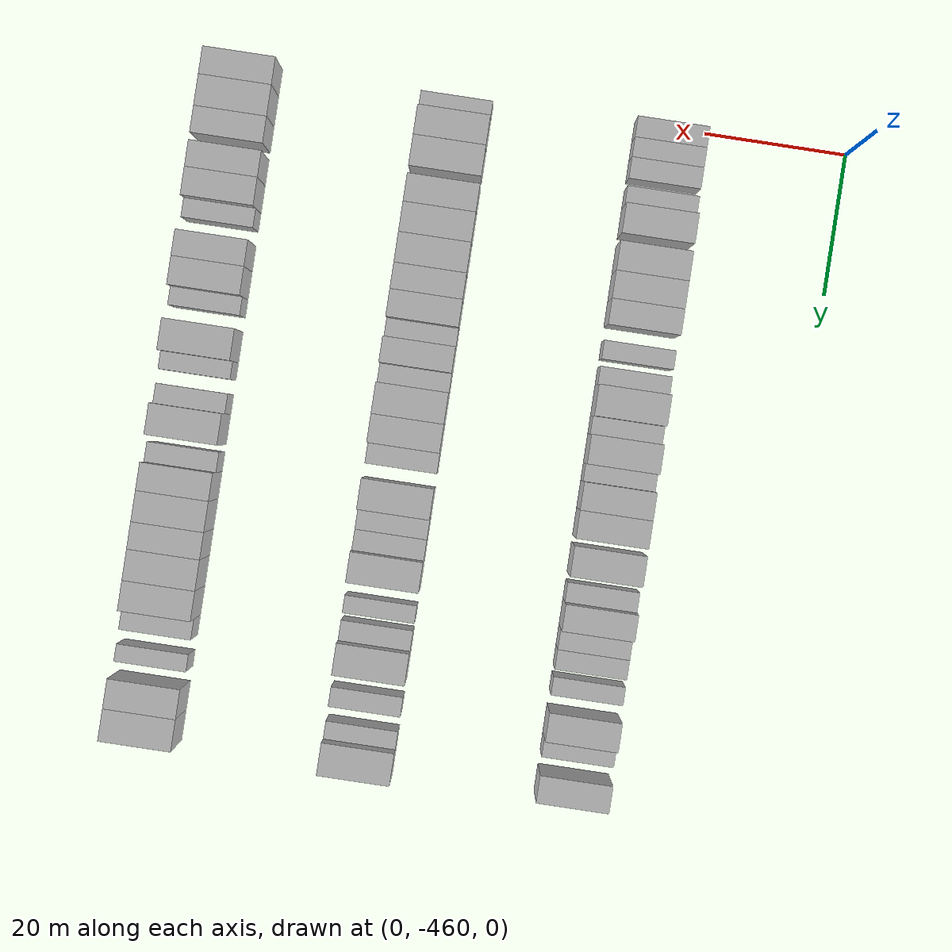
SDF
<sdf version="1.6">
 <world name="default">
  <model name="building_1">
   <static>1</static>
   <pose>25.0000 -458.5501 0 0.000000 0.000000 0.000000</pose>
   <link name="link">
    <pose>0 0 3.00 0 0 0</pose>
    <collision name="collision"><geometry><box><size>10.0000 2.8998 6.0000</size></box></geometry></collision>
    <visual name="visual">
     <cast_shadows>0</cast_shadows>
     <geometry><box><size>10.0000 2.8998 6.0000</size></box></geometry>
     <material>
      <script>
       <uri>model://HANNAS_wall/materials/scripts</uri>
       <uri>model://HANNAS_wall/materials/textures</uri>
       <name>vrc/HANNAS_wall</name>
      </script>
     </material>
    </visual>
   </link>
  </model>
  <model name="building_2">
   <static>1</static>
   <pose>25.0000 -455.7157 0 0.000000 0.000000 0.000000</pose>
   <link name="link">
    <pose>0 0 3.00 0 0 0</pose>
    <collision name="collision"><geometry><box><size>10.0000 2.7691 6.0000</size></box></geometry></collision>
    <visual name="visual">
     <cast_shadows>0</cast_shadows>
     <geometry><box><size>10.0000 2.7691 6.0000</size></box></geometry>
     <material>
      <script>
       <uri>model://HANNAS_wall/materials/scripts</uri>
       <uri>model://HANNAS_wall/materials/textures</uri>
       <name>vrc/HANNAS_wall</name>
      </script>
     </material>
    </visual>
   </link>
  </model>
  <model name="building_3">
   <static>1</static>
   <pose>25.0000 -452.8345 0 0.000000 0.000000 0.000000</pose>
   <link name="link">
    <pose>0 0 3.00 0 0 0</pose>
    <collision name="collision"><geometry><box><size>10.0000 2.9934 6.0000</size></box></geometry></collision>
    <visual name="visual">
     <cast_shadows>0</cast_shadows>
     <geometry><box><size>10.0000 2.9934 6.0000</size></box></geometry>
     <material>
      <script>
       <uri>model://HANNAS_wall/materials/scripts</uri>
       <uri>model://HANNAS_wall/materials/textures</uri>
       <name>vrc/HANNAS_wall</name>
      </script>
     </material>
    </visual>
   </link>
  </model>
  <model name="building_4">
   <static>1</static>
   <pose>25.0000 -448.9767 0 0.000000 0.000000 0.000000</pose>
   <link name="link">
    <pose>0 0 3.00 0 0 0</pose>
    <collision name="collision"><geometry><box><size>10.0000 2.7221 6.0000</size></box></geometry></collision>
    <visual name="visual">
     <cast_shadows>0</cast_shadows>
     <geometry><box><size>10.0000 2.7221 6.0000</size></box></geometry>
     <material>
      <script>
       <uri>model://HANNAS_wall/materials/scripts</uri>
       <uri>model://HANNAS_wall/materials/textures</uri>
       <name>vrc/HANNAS_wall</name>
      </script>
     </material>
    </visual>
   </link>
  </model>
  <model name="building_5">
   <static>1</static>
   <pose>25.0000 -445.5205 0 0.000000 0.000000 0.000000</pose>
   <link name="link">
    <pose>0 0 4.50 0 0 0</pose>
    <collision name="collision"><geometry><box><size>10.0000 4.1904 9.0000</size></box></geometry></collision>
    <visual name="visual">
     <cast_shadows>0</cast_shadows>
     <geometry><box><size>10.0000 4.1904 9.0000</size></box></geometry>
     <material>
      <script>
       <uri>model://HANNAS_wall/materials/scripts</uri>
       <uri>model://HANNAS_wall/materials/textures</uri>
       <name>vrc/HANNAS_wall</name>
      </script>
     </material>
    </visual>
   </link>
  </model>
  <model name="building_6">
   <static>1</static>
   <pose>25.0000 -440.3815 0 0.000000 0.000000 0.000000</pose>
   <link name="link">
    <pose>0 0 4.50 0 0 0</pose>
    <collision name="collision"><geometry><box><size>10.0000 4.0876 9.0000</size></box></geometry></collision>
    <visual name="visual">
     <cast_shadows>0</cast_shadows>
     <geometry><box><size>10.0000 4.0876 9.0000</size></box></geometry>
     <material>
      <script>
       <uri>model://HANNAS_wall/materials/scripts</uri>
       <uri>model://HANNAS_wall/materials/textures</uri>
       <name>vrc/HANNAS_wall</name>
      </script>
     </material>
    </visual>
   </link>
  </model>
  <model name="building_7">
   <static>1</static>
   <pose>25.0000 -436.4163 0 0.000000 0.000000 0.000000</pose>
   <link name="link">
    <pose>0 0 4.50 0 0 0</pose>
    <collision name="collision"><geometry><box><size>10.0000 3.8426 9.0000</size></box></geometry></collision>
    <visual name="visual">
     <cast_shadows>0</cast_shadows>
     <geometry><box><size>10.0000 3.8426 9.0000</size></box></geometry>
     <material>
      <script>
       <uri>model://HANNAS_wall/materials/scripts</uri>
       <uri>model://HANNAS_wall/materials/textures</uri>
       <name>vrc/HANNAS_wall</name>
      </script>
     </material>
    </visual>
   </link>
  </model>
  <model name="building_8">
   <static>1</static>
   <pose>25.0000 -432.6935 0 0.000000 0.000000 0.000000</pose>
   <link name="link">
    <pose>0 0 4.50 0 0 0</pose>
    <collision name="collision"><geometry><box><size>10.0000 3.6031 9.0000</size></box></geometry></collision>
    <visual name="visual">
     <cast_shadows>0</cast_shadows>
     <geometry><box><size>10.0000 3.6031 9.0000</size></box></geometry>
     <material>
      <script>
       <uri>model://HANNAS_wall/materials/scripts</uri>
       <uri>model://HANNAS_wall/materials/textures</uri>
       <name>vrc/HANNAS_wall</name>
      </script>
     </material>
    </visual>
   </link>
  </model>
  <model name="building_9">
   <static>1</static>
   <pose>25.0000 -427.5836 0 0.000000 0.000000 0.000000</pose>
   <link name="link">
    <pose>0 0 3.00 0 0 0</pose>
    <collision name="collision"><geometry><box><size>10.0000 2.6165 6.0000</size></box></geometry></collision>
    <visual name="visual">
     <cast_shadows>0</cast_shadows>
     <geometry><box><size>10.0000 2.6165 6.0000</size></box></geometry>
     <material>
      <script>
       <uri>model://HANNAS_wall/materials/scripts</uri>
       <uri>model://HANNAS_wall/materials/textures</uri>
       <name>vrc/HANNAS_wall</name>
      </script>
     </material>
    </visual>
   </link>
  </model>
  <model name="building_10">
   <static>1</static>
   <pose>25.0000 -423.9953 0 0.000000 0.000000 0.000000</pose>
   <link name="link">
    <pose>0 0 3.00 0 0 0</pose>
    <collision name="collision"><geometry><box><size>10.0000 2.5602 6.0000</size></box></geometry></collision>
    <visual name="visual">
     <cast_shadows>0</cast_shadows>
     <geometry><box><size>10.0000 2.5602 6.0000</size></box></geometry>
     <material>
      <script>
       <uri>model://HANNAS_wall/materials/scripts</uri>
       <uri>model://HANNAS_wall/materials/textures</uri>
       <name>vrc/HANNAS_wall</name>
      </script>
     </material>
    </visual>
   </link>
  </model>
  <model name="building_11">
   <static>1</static>
   <pose>25.0000 -420.5401 0 0.000000 0.000000 0.000000</pose>
   <link name="link">
    <pose>0 0 4.50 0 0 0</pose>
    <collision name="collision"><geometry><box><size>10.0000 4.3502 9.0000</size></box></geometry></collision>
    <visual name="visual">
     <cast_shadows>0</cast_shadows>
     <geometry><box><size>10.0000 4.3502 9.0000</size></box></geometry>
     <material>
      <script>
       <uri>model://HANNAS_wall/materials/scripts</uri>
       <uri>model://HANNAS_wall/materials/textures</uri>
       <name>vrc/HANNAS_wall</name>
      </script>
     </material>
    </visual>
   </link>
  </model>
  <model name="building_12">
   <static>1</static>
   <pose>25.0000 -417.1077 0 0.000000 0.000000 0.000000</pose>
   <link name="link">
    <pose>0 0 3.00 0 0 0</pose>
    <collision name="collision"><geometry><box><size>10.0000 2.5145 6.0000</size></box></geometry></collision>
    <visual name="visual">
     <cast_shadows>0</cast_shadows>
     <geometry><box><size>10.0000 2.5145 6.0000</size></box></geometry>
     <material>
      <script>
       <uri>model://HANNAS_wall/materials/scripts</uri>
       <uri>model://HANNAS_wall/materials/textures</uri>
       <name>vrc/HANNAS_wall</name>
      </script>
     </material>
    </visual>
   </link>
  </model>
  <model name="building_13">
   <static>1</static>
   <pose>25.0000 -413.8038 0 0.000000 0.000000 0.000000</pose>
   <link name="link">
    <pose>0 0 4.50 0 0 0</pose>
    <collision name="collision"><geometry><box><size>10.0000 4.0934 9.0000</size></box></geometry></collision>
    <visual name="visual">
     <cast_shadows>0</cast_shadows>
     <geometry><box><size>10.0000 4.0934 9.0000</size></box></geometry>
     <material>
      <script>
       <uri>model://HANNAS_wall/materials/scripts</uri>
       <uri>model://HANNAS_wall/materials/textures</uri>
       <name>vrc/HANNAS_wall</name>
      </script>
     </material>
    </visual>
   </link>
  </model>
  <model name="building_14">
   <static>1</static>
   <pose>25.0000 -410.5262 0 0.000000 0.000000 0.000000</pose>
   <link name="link">
    <pose>0 0 3.00 0 0 0</pose>
    <collision name="collision"><geometry><box><size>10.0000 2.4617 6.0000</size></box></geometry></collision>
    <visual name="visual">
     <cast_shadows>0</cast_shadows>
     <geometry><box><size>10.0000 2.4617 6.0000</size></box></geometry>
     <material>
      <script>
       <uri>model://HANNAS_wall/materials/scripts</uri>
       <uri>model://HANNAS_wall/materials/textures</uri>
       <name>vrc/HANNAS_wall</name>
      </script>
     </material>
    </visual>
   </link>
  </model>
  <model name="building_15">
   <static>1</static>
   <pose>25.0000 -407.3554 0 0.000000 0.000000 0.000000</pose>
   <link name="link">
    <pose>0 0 4.50 0 0 0</pose>
    <collision name="collision"><geometry><box><size>10.0000 3.8799 9.0000</size></box></geometry></collision>
    <visual name="visual">
     <cast_shadows>0</cast_shadows>
     <geometry><box><size>10.0000 3.8799 9.0000</size></box></geometry>
     <material>
      <script>
       <uri>model://HANNAS_wall/materials/scripts</uri>
       <uri>model://HANNAS_wall/materials/textures</uri>
       <name>vrc/HANNAS_wall</name>
      </script>
     </material>
    </visual>
   </link>
  </model>
  <model name="building_16">
   <static>1</static>
   <pose>25.0000 -403.4733 0 0.000000 0.000000 0.000000</pose>
   <link name="link">
    <pose>0 0 4.50 0 0 0</pose>
    <collision name="collision"><geometry><box><size>10.0000 3.8842 9.0000</size></box></geometry></collision>
    <visual name="visual">
     <cast_shadows>0</cast_shadows>
     <geometry><box><size>10.0000 3.8842 9.0000</size></box></geometry>
     <material>
      <script>
       <uri>model://HANNAS_wall/materials/scripts</uri>
       <uri>model://HANNAS_wall/materials/textures</uri>
       <name>vrc/HANNAS_wall</name>
      </script>
     </material>
    </visual>
   </link>
  </model>
  <model name="building_17">
   <static>1</static>
   <pose>25.0000 -398.4117 0 0.000000 0.000000 0.000000</pose>
   <link name="link">
    <pose>0 0 4.50 0 0 0</pose>
    <collision name="collision"><geometry><box><size>10.0000 4.2392 9.0000</size></box></geometry></collision>
    <visual name="visual">
     <cast_shadows>0</cast_shadows>
     <geometry><box><size>10.0000 4.2392 9.0000</size></box></geometry>
     <material>
      <script>
       <uri>model://HANNAS_wall/materials/scripts</uri>
       <uri>model://HANNAS_wall/materials/textures</uri>
       <name>vrc/HANNAS_wall</name>
      </script>
     </material>
    </visual>
   </link>
  </model>
  <model name="building_18">
   <static>1</static>
   <pose>25.0000 -393.9038 0 0.000000 0.000000 0.000000</pose>
   <link name="link">
    <pose>0 0 3.00 0 0 0</pose>
    <collision name="collision"><geometry><box><size>10.0000 2.7766 6.0000</size></box></geometry></collision>
    <visual name="visual">
     <cast_shadows>0</cast_shadows>
     <geometry><box><size>10.0000 2.7766 6.0000</size></box></geometry>
     <material>
      <script>
       <uri>model://HANNAS_wall/materials/scripts</uri>
       <uri>model://HANNAS_wall/materials/textures</uri>
       <name>vrc/HANNAS_wall</name>
      </script>
     </material>
    </visual>
   </link>
  </model>
  <model name="building_19">
   <static>1</static>
   <pose>25.0000 -390.6571 0 0.000000 0.000000 0.000000</pose>
   <link name="link">
    <pose>0 0 4.50 0 0 0</pose>
    <collision name="collision"><geometry><box><size>10.0000 3.7168 9.0000</size></box></geometry></collision>
    <visual name="visual">
     <cast_shadows>0</cast_shadows>
     <geometry><box><size>10.0000 3.7168 9.0000</size></box></geometry>
     <material>
      <script>
       <uri>model://HANNAS_wall/materials/scripts</uri>
       <uri>model://HANNAS_wall/materials/textures</uri>
       <name>vrc/HANNAS_wall</name>
      </script>
     </material>
    </visual>
   </link>
  </model>
  <model name="building_20">
   <static>1</static>
   <pose>25.0000 -387.3638 0 0.000000 0.000000 0.000000</pose>
   <link name="link">
    <pose>0 0 3.00 0 0 0</pose>
    <collision name="collision"><geometry><box><size>10.0000 2.8698 6.0000</size></box></geometry></collision>
    <visual name="visual">
     <cast_shadows>0</cast_shadows>
     <geometry><box><size>10.0000 2.8698 6.0000</size></box></geometry>
     <material>
      <script>
       <uri>model://HANNAS_wall/materials/scripts</uri>
       <uri>model://HANNAS_wall/materials/textures</uri>
       <name>vrc/HANNAS_wall</name>
      </script>
     </material>
    </visual>
   </link>
  </model>
  <model name="building_21">
   <static>1</static>
   <pose>25.0000 -384.5546 0 0.000000 0.000000 0.000000</pose>
   <link name="link">
    <pose>0 0 3.00 0 0 0</pose>
    <collision name="collision"><geometry><box><size>10.0000 2.7485 6.0000</size></box></geometry></collision>
    <visual name="visual">
     <cast_shadows>0</cast_shadows>
     <geometry><box><size>10.0000 2.7485 6.0000</size></box></geometry>
     <material>
      <script>
       <uri>model://HANNAS_wall/materials/scripts</uri>
       <uri>model://HANNAS_wall/materials/textures</uri>
       <name>vrc/HANNAS_wall</name>
      </script>
     </material>
    </visual>
   </link>
  </model>
  <model name="building_22">
   <static>1</static>
   <pose>25.0000 -380.9059 0 0.000000 0.000000 0.000000</pose>
   <link name="link">
    <pose>0 0 3.00 0 0 0</pose>
    <collision name="collision"><geometry><box><size>10.0000 2.5488 6.0000</size></box></geometry></collision>
    <visual name="visual">
     <cast_shadows>0</cast_shadows>
     <geometry><box><size>10.0000 2.5488 6.0000</size></box></geometry>
     <material>
      <script>
       <uri>model://HANNAS_wall/materials/scripts</uri>
       <uri>model://HANNAS_wall/materials/textures</uri>
       <name>vrc/HANNAS_wall</name>
      </script>
     </material>
    </visual>
   </link>
  </model>
  <model name="building_23">
   <static>1</static>
   <pose>25.0000 -375.6319 0 0.000000 0.000000 0.000000</pose>
   <link name="link">
    <pose>0 0 4.50 0 0 0</pose>
    <collision name="collision"><geometry><box><size>10.0000 3.9991 9.0000</size></box></geometry></collision>
    <visual name="visual">
     <cast_shadows>0</cast_shadows>
     <geometry><box><size>10.0000 3.9991 9.0000</size></box></geometry>
     <material>
      <script>
       <uri>model://HANNAS_wall/materials/scripts</uri>
       <uri>model://HANNAS_wall/materials/textures</uri>
       <name>vrc/HANNAS_wall</name>
      </script>
     </material>
    </visual>
   </link>
  </model>
  <model name="building_24">
   <static>1</static>
   <pose>25.0000 -372.3390 0 0.000000 0.000000 0.000000</pose>
   <link name="link">
    <pose>0 0 3.00 0 0 0</pose>
    <collision name="collision"><geometry><box><size>10.0000 2.5869 6.0000</size></box></geometry></collision>
    <visual name="visual">
     <cast_shadows>0</cast_shadows>
     <geometry><box><size>10.0000 2.5869 6.0000</size></box></geometry>
     <material>
      <script>
       <uri>model://HANNAS_wall/materials/scripts</uri>
       <uri>model://HANNAS_wall/materials/textures</uri>
       <name>vrc/HANNAS_wall</name>
      </script>
     </material>
    </visual>
   </link>
  </model>
  <model name="building_25">
   <static>1</static>
   <pose>25.0000 -367.1583 0 0.000000 0.000000 0.000000</pose>
   <link name="link">
    <pose>0 0 4.50 0 0 0</pose>
    <collision name="collision"><geometry><box><size>10.0000 3.7744 9.0000</size></box></geometry></collision>
    <visual name="visual">
     <cast_shadows>0</cast_shadows>
     <geometry><box><size>10.0000 3.7744 9.0000</size></box></geometry>
     <material>
      <script>
       <uri>model://HANNAS_wall/materials/scripts</uri>
       <uri>model://HANNAS_wall/materials/textures</uri>
       <name>vrc/HANNAS_wall</name>
      </script>
     </material>
    </visual>
   </link>
  </model>
  <model name="building_226">
   <static>1</static>
   <pose>55.0000 -457.7772 0 0.000000 0.000000 0.000000</pose>
   <link name="link">
    <pose>0 0 3.00 0 0 0</pose>
    <collision name="collision"><geometry><box><size>10.0000 2.4456 6.0000</size></box></geometry></collision>
    <visual name="visual">
     <cast_shadows>0</cast_shadows>
     <geometry><box><size>10.0000 2.4456 6.0000</size></box></geometry>
     <material>
      <script>
       <uri>model://HANNAS_wall/materials/scripts</uri>
       <uri>model://HANNAS_wall/materials/textures</uri>
       <name>vrc/HANNAS_wall</name>
      </script>
     </material>
    </visual>
   </link>
  </model>
  <model name="building_227">
   <static>1</static>
   <pose>55.0000 -454.4988 0 0.000000 0.000000 0.000000</pose>
   <link name="link">
    <pose>0 0 4.50 0 0 0</pose>
    <collision name="collision"><geometry><box><size>10.0000 4.1113 9.0000</size></box></geometry></collision>
    <visual name="visual">
     <cast_shadows>0</cast_shadows>
     <geometry><box><size>10.0000 4.1113 9.0000</size></box></geometry>
     <material>
      <script>
       <uri>model://HANNAS_wall/materials/scripts</uri>
       <uri>model://HANNAS_wall/materials/textures</uri>
       <name>vrc/HANNAS_wall</name>
      </script>
     </material>
    </visual>
   </link>
  </model>
  <model name="building_228">
   <static>1</static>
   <pose>55.0000 -450.2972 0 0.000000 0.000000 0.000000</pose>
   <link name="link">
    <pose>0 0 4.50 0 0 0</pose>
    <collision name="collision"><geometry><box><size>10.0000 4.2917 9.0000</size></box></geometry></collision>
    <visual name="visual">
     <cast_shadows>0</cast_shadows>
     <geometry><box><size>10.0000 4.2917 9.0000</size></box></geometry>
     <material>
      <script>
       <uri>model://HANNAS_wall/materials/scripts</uri>
       <uri>model://HANNAS_wall/materials/textures</uri>
       <name>vrc/HANNAS_wall</name>
      </script>
     </material>
    </visual>
   </link>
  </model>
  <model name="building_229">
   <static>1</static>
   <pose>55.0000 -445.2065 0 0.000000 0.000000 0.000000</pose>
   <link name="link">
    <pose>0 0 4.50 0 0 0</pose>
    <collision name="collision"><geometry><box><size>10.0000 3.8897 9.0000</size></box></geometry></collision>
    <visual name="visual">
     <cast_shadows>0</cast_shadows>
     <geometry><box><size>10.0000 3.8897 9.0000</size></box></geometry>
     <material>
      <script>
       <uri>model://HANNAS_wall/materials/scripts</uri>
       <uri>model://HANNAS_wall/materials/textures</uri>
       <name>vrc/HANNAS_wall</name>
      </script>
     </material>
    </visual>
   </link>
  </model>
  <model name="building_230">
   <static>1</static>
   <pose>55.0000 -441.1866 0 0.000000 0.000000 0.000000</pose>
   <link name="link">
    <pose>0 0 4.50 0 0 0</pose>
    <collision name="collision"><geometry><box><size>10.0000 4.1501 9.0000</size></box></geometry></collision>
    <visual name="visual">
     <cast_shadows>0</cast_shadows>
     <geometry><box><size>10.0000 4.1501 9.0000</size></box></geometry>
     <material>
      <script>
       <uri>model://HANNAS_wall/materials/scripts</uri>
       <uri>model://HANNAS_wall/materials/textures</uri>
       <name>vrc/HANNAS_wall</name>
      </script>
     </material>
    </visual>
   </link>
  </model>
  <model name="building_231">
   <static>1</static>
   <pose>55.0000 -437.0083 0 0.000000 0.000000 0.000000</pose>
   <link name="link">
    <pose>0 0 4.50 0 0 0</pose>
    <collision name="collision"><geometry><box><size>10.0000 4.2065 9.0000</size></box></geometry></collision>
    <visual name="visual">
     <cast_shadows>0</cast_shadows>
     <geometry><box><size>10.0000 4.2065 9.0000</size></box></geometry>
     <material>
      <script>
       <uri>model://HANNAS_wall/materials/scripts</uri>
       <uri>model://HANNAS_wall/materials/textures</uri>
       <name>vrc/HANNAS_wall</name>
      </script>
     </material>
    </visual>
   </link>
  </model>
  <model name="building_232">
   <static>1</static>
   <pose>55.0000 -433.0946 0 0.000000 0.000000 0.000000</pose>
   <link name="link">
    <pose>0 0 4.50 0 0 0</pose>
    <collision name="collision"><geometry><box><size>10.0000 3.6209 9.0000</size></box></geometry></collision>
    <visual name="visual">
     <cast_shadows>0</cast_shadows>
     <geometry><box><size>10.0000 3.6209 9.0000</size></box></geometry>
     <material>
      <script>
       <uri>model://HANNAS_wall/materials/scripts</uri>
       <uri>model://HANNAS_wall/materials/textures</uri>
       <name>vrc/HANNAS_wall</name>
      </script>
     </material>
    </visual>
   </link>
  </model>
  <model name="building_233">
   <static>1</static>
   <pose>55.0000 -429.3724 0 0.000000 0.000000 0.000000</pose>
   <link name="link">
    <pose>0 0 4.50 0 0 0</pose>
    <collision name="collision"><geometry><box><size>10.0000 3.8236 9.0000</size></box></geometry></collision>
    <visual name="visual">
     <cast_shadows>0</cast_shadows>
     <geometry><box><size>10.0000 3.8236 9.0000</size></box></geometry>
     <material>
      <script>
       <uri>model://HANNAS_wall/materials/scripts</uri>
       <uri>model://HANNAS_wall/materials/textures</uri>
       <name>vrc/HANNAS_wall</name>
      </script>
     </material>
    </visual>
   </link>
  </model>
  <model name="building_234">
   <static>1</static>
   <pose>55.0000 -426.1313 0 0.000000 0.000000 0.000000</pose>
   <link name="link">
    <pose>0 0 3.00 0 0 0</pose>
    <collision name="collision"><geometry><box><size>10.0000 2.6587 6.0000</size></box></geometry></collision>
    <visual name="visual">
     <cast_shadows>0</cast_shadows>
     <geometry><box><size>10.0000 2.6587 6.0000</size></box></geometry>
     <material>
      <script>
       <uri>model://HANNAS_wall/materials/scripts</uri>
       <uri>model://HANNAS_wall/materials/textures</uri>
       <name>vrc/HANNAS_wall</name>
      </script>
     </material>
    </visual>
   </link>
  </model>
  <model name="building_235">
   <static>1</static>
   <pose>55.0000 -422.9881 0 0.000000 0.000000 0.000000</pose>
   <link name="link">
    <pose>0 0 4.50 0 0 0</pose>
    <collision name="collision"><geometry><box><size>10.0000 3.6277 9.0000</size></box></geometry></collision>
    <visual name="visual">
     <cast_shadows>0</cast_shadows>
     <geometry><box><size>10.0000 3.6277 9.0000</size></box></geometry>
     <material>
      <script>
       <uri>model://HANNAS_wall/materials/scripts</uri>
       <uri>model://HANNAS_wall/materials/textures</uri>
       <name>vrc/HANNAS_wall</name>
      </script>
     </material>
    </visual>
   </link>
  </model>
  <model name="building_236">
   <static>1</static>
   <pose>55.0000 -419.8248 0 0.000000 0.000000 0.000000</pose>
   <link name="link">
    <pose>0 0 3.00 0 0 0</pose>
    <collision name="collision"><geometry><box><size>10.0000 2.6990 6.0000</size></box></geometry></collision>
    <visual name="visual">
     <cast_shadows>0</cast_shadows>
     <geometry><box><size>10.0000 2.6990 6.0000</size></box></geometry>
     <material>
      <script>
       <uri>model://HANNAS_wall/materials/scripts</uri>
       <uri>model://HANNAS_wall/materials/textures</uri>
       <name>vrc/HANNAS_wall</name>
      </script>
     </material>
    </visual>
   </link>
  </model>
  <model name="building_237">
   <static>1</static>
   <pose>55.0000 -416.3096 0 0.000000 0.000000 0.000000</pose>
   <link name="link">
    <pose>0 0 4.50 0 0 0</pose>
    <collision name="collision"><geometry><box><size>10.0000 4.3312 9.0000</size></box></geometry></collision>
    <visual name="visual">
     <cast_shadows>0</cast_shadows>
     <geometry><box><size>10.0000 4.3312 9.0000</size></box></geometry>
     <material>
      <script>
       <uri>model://HANNAS_wall/materials/scripts</uri>
       <uri>model://HANNAS_wall/materials/textures</uri>
       <name>vrc/HANNAS_wall</name>
      </script>
     </material>
    </visual>
   </link>
  </model>
  <model name="building_238">
   <static>1</static>
   <pose>55.0000 -412.1594 0 0.000000 0.000000 0.000000</pose>
   <link name="link">
    <pose>0 0 4.50 0 0 0</pose>
    <collision name="collision"><geometry><box><size>10.0000 3.9693 9.0000</size></box></geometry></collision>
    <visual name="visual">
     <cast_shadows>0</cast_shadows>
     <geometry><box><size>10.0000 3.9693 9.0000</size></box></geometry>
     <material>
      <script>
       <uri>model://HANNAS_wall/materials/scripts</uri>
       <uri>model://HANNAS_wall/materials/textures</uri>
       <name>vrc/HANNAS_wall</name>
      </script>
     </material>
    </visual>
   </link>
  </model>
  <model name="building_239">
   <static>1</static>
   <pose>55.0000 -408.7297 0 0.000000 0.000000 0.000000</pose>
   <link name="link">
    <pose>0 0 3.00 0 0 0</pose>
    <collision name="collision"><geometry><box><size>10.0000 2.8899 6.0000</size></box></geometry></collision>
    <visual name="visual">
     <cast_shadows>0</cast_shadows>
     <geometry><box><size>10.0000 2.8899 6.0000</size></box></geometry>
     <material>
      <script>
       <uri>model://HANNAS_wall/materials/scripts</uri>
       <uri>model://HANNAS_wall/materials/textures</uri>
       <name>vrc/HANNAS_wall</name>
      </script>
     </material>
    </visual>
   </link>
  </model>
  <model name="building_240">
   <static>1</static>
   <pose>55.0000 -403.1420 0 0.000000 0.000000 0.000000</pose>
   <link name="link">
    <pose>0 0 4.50 0 0 0</pose>
    <collision name="collision"><geometry><box><size>10.0000 4.2855 9.0000</size></box></geometry></collision>
    <visual name="visual">
     <cast_shadows>0</cast_shadows>
     <geometry><box><size>10.0000 4.2855 9.0000</size></box></geometry>
     <material>
      <script>
       <uri>model://HANNAS_wall/materials/scripts</uri>
       <uri>model://HANNAS_wall/materials/textures</uri>
       <name>vrc/HANNAS_wall</name>
      </script>
     </material>
    </visual>
   </link>
  </model>
  <model name="building_241">
   <static>1</static>
   <pose>55.0000 -399.5616 0 0.000000 0.000000 0.000000</pose>
   <link name="link">
    <pose>0 0 3.00 0 0 0</pose>
    <collision name="collision"><geometry><box><size>10.0000 2.8754 6.0000</size></box></geometry></collision>
    <visual name="visual">
     <cast_shadows>0</cast_shadows>
     <geometry><box><size>10.0000 2.8754 6.0000</size></box></geometry>
     <material>
      <script>
       <uri>model://HANNAS_wall/materials/scripts</uri>
       <uri>model://HANNAS_wall/materials/textures</uri>
       <name>vrc/HANNAS_wall</name>
      </script>
     </material>
    </visual>
   </link>
  </model>
  <model name="building_242">
   <static>1</static>
   <pose>55.0000 -396.6599 0 0.000000 0.000000 0.000000</pose>
   <link name="link">
    <pose>0 0 3.00 0 0 0</pose>
    <collision name="collision"><geometry><box><size>10.0000 2.9279 6.0000</size></box></geometry></collision>
    <visual name="visual">
     <cast_shadows>0</cast_shadows>
     <geometry><box><size>10.0000 2.9279 6.0000</size></box></geometry>
     <material>
      <script>
       <uri>model://HANNAS_wall/materials/scripts</uri>
       <uri>model://HANNAS_wall/materials/textures</uri>
       <name>vrc/HANNAS_wall</name>
      </script>
     </material>
    </visual>
   </link>
  </model>
  <model name="building_243">
   <static>1</static>
   <pose>55.0000 -393.0775 0 0.000000 0.000000 0.000000</pose>
   <link name="link">
    <pose>0 0 4.50 0 0 0</pose>
    <collision name="collision"><geometry><box><size>10.0000 4.2368 9.0000</size></box></geometry></collision>
    <visual name="visual">
     <cast_shadows>0</cast_shadows>
     <geometry><box><size>10.0000 4.2368 9.0000</size></box></geometry>
     <material>
      <script>
       <uri>model://HANNAS_wall/materials/scripts</uri>
       <uri>model://HANNAS_wall/materials/textures</uri>
       <name>vrc/HANNAS_wall</name>
      </script>
     </material>
    </visual>
   </link>
  </model>
  <model name="building_244">
   <static>1</static>
   <pose>55.0000 -387.7322 0 0.000000 0.000000 0.000000</pose>
   <link name="link">
    <pose>0 0 3.00 0 0 0</pose>
    <collision name="collision"><geometry><box><size>10.0000 2.4540 6.0000</size></box></geometry></collision>
    <visual name="visual">
     <cast_shadows>0</cast_shadows>
     <geometry><box><size>10.0000 2.4540 6.0000</size></box></geometry>
     <material>
      <script>
       <uri>model://HANNAS_wall/materials/scripts</uri>
       <uri>model://HANNAS_wall/materials/textures</uri>
       <name>vrc/HANNAS_wall</name>
      </script>
     </material>
    </visual>
   </link>
  </model>
  <model name="building_245">
   <static>1</static>
   <pose>55.0000 -384.0832 0 0.000000 0.000000 0.000000</pose>
   <link name="link">
    <pose>0 0 3.00 0 0 0</pose>
    <collision name="collision"><geometry><box><size>10.0000 2.8439 6.0000</size></box></geometry></collision>
    <visual name="visual">
     <cast_shadows>0</cast_shadows>
     <geometry><box><size>10.0000 2.8439 6.0000</size></box></geometry>
     <material>
      <script>
       <uri>model://HANNAS_wall/materials/scripts</uri>
       <uri>model://HANNAS_wall/materials/textures</uri>
       <name>vrc/HANNAS_wall</name>
      </script>
     </material>
    </visual>
   </link>
  </model>
  <model name="building_246">
   <static>1</static>
   <pose>55.0000 -380.4565 0 0.000000 0.000000 0.000000</pose>
   <link name="link">
    <pose>0 0 4.50 0 0 0</pose>
    <collision name="collision"><geometry><box><size>10.0000 4.4096 9.0000</size></box></geometry></collision>
    <visual name="visual">
     <cast_shadows>0</cast_shadows>
     <geometry><box><size>10.0000 4.4096 9.0000</size></box></geometry>
     <material>
      <script>
       <uri>model://HANNAS_wall/materials/scripts</uri>
       <uri>model://HANNAS_wall/materials/textures</uri>
       <name>vrc/HANNAS_wall</name>
      </script>
     </material>
    </visual>
   </link>
  </model>
  <model name="building_247">
   <static>1</static>
   <pose>55.0000 -374.8813 0 0.000000 0.000000 0.000000</pose>
   <link name="link">
    <pose>0 0 3.00 0 0 0</pose>
    <collision name="collision"><geometry><box><size>10.0000 2.7409 6.0000</size></box></geometry></collision>
    <visual name="visual">
     <cast_shadows>0</cast_shadows>
     <geometry><box><size>10.0000 2.7409 6.0000</size></box></geometry>
     <material>
      <script>
       <uri>model://HANNAS_wall/materials/scripts</uri>
       <uri>model://HANNAS_wall/materials/textures</uri>
       <name>vrc/HANNAS_wall</name>
      </script>
     </material>
    </visual>
   </link>
  </model>
  <model name="building_248">
   <static>1</static>
   <pose>55.0000 -370.2616 0 0.000000 0.000000 0.000000</pose>
   <link name="link">
    <pose>0 0 3.00 0 0 0</pose>
    <collision name="collision"><geometry><box><size>10.0000 2.4985 6.0000</size></box></geometry></collision>
    <visual name="visual">
     <cast_shadows>0</cast_shadows>
     <geometry><box><size>10.0000 2.4985 6.0000</size></box></geometry>
     <material>
      <script>
       <uri>model://HANNAS_wall/materials/scripts</uri>
       <uri>model://HANNAS_wall/materials/textures</uri>
       <name>vrc/HANNAS_wall</name>
      </script>
     </material>
    </visual>
   </link>
  </model>
  <model name="building_249">
   <static>1</static>
   <pose>55.0000 -366.7627 0 0.000000 0.000000 0.000000</pose>
   <link name="link">
    <pose>0 0 4.50 0 0 0</pose>
    <collision name="collision"><geometry><box><size>10.0000 4.4992 9.0000</size></box></geometry></collision>
    <visual name="visual">
     <cast_shadows>0</cast_shadows>
     <geometry><box><size>10.0000 4.4992 9.0000</size></box></geometry>
     <material>
      <script>
       <uri>model://HANNAS_wall/materials/scripts</uri>
       <uri>model://HANNAS_wall/materials/textures</uri>
       <name>vrc/HANNAS_wall</name>
      </script>
     </material>
    </visual>
   </link>
  </model>
  <model name="building_455">
   <static>1</static>
   <pose>85.0000 -458.0913 0 0.000000 0.000000 0.000000</pose>
   <link name="link">
    <pose>0 0 4.50 0 0 0</pose>
    <collision name="collision"><geometry><box><size>10.0000 3.8175 9.0000</size></box></geometry></collision>
    <visual name="visual">
     <cast_shadows>0</cast_shadows>
     <geometry><box><size>10.0000 3.8175 9.0000</size></box></geometry>
     <material>
      <script>
       <uri>model://HANNAS_wall/materials/scripts</uri>
       <uri>model://HANNAS_wall/materials/textures</uri>
       <name>vrc/HANNAS_wall</name>
      </script>
     </material>
    </visual>
   </link>
  </model>
  <model name="building_456">
   <static>1</static>
   <pose>85.0000 -454.0209 0 0.000000 0.000000 0.000000</pose>
   <link name="link">
    <pose>0 0 4.50 0 0 0</pose>
    <collision name="collision"><geometry><box><size>10.0000 4.3232 9.0000</size></box></geometry></collision>
    <visual name="visual">
     <cast_shadows>0</cast_shadows>
     <geometry><box><size>10.0000 4.3232 9.0000</size></box></geometry>
     <material>
      <script>
       <uri>model://HANNAS_wall/materials/scripts</uri>
       <uri>model://HANNAS_wall/materials/textures</uri>
       <name>vrc/HANNAS_wall</name>
      </script>
     </material>
    </visual>
   </link>
  </model>
  <model name="building_457">
   <static>1</static>
   <pose>85.0000 -450.0120 0 0.000000 0.000000 0.000000</pose>
   <link name="link">
    <pose>0 0 4.50 0 0 0</pose>
    <collision name="collision"><geometry><box><size>10.0000 3.6946 9.0000</size></box></geometry></collision>
    <visual name="visual">
     <cast_shadows>0</cast_shadows>
     <geometry><box><size>10.0000 3.6946 9.0000</size></box></geometry>
     <material>
      <script>
       <uri>model://HANNAS_wall/materials/scripts</uri>
       <uri>model://HANNAS_wall/materials/textures</uri>
       <name>vrc/HANNAS_wall</name>
      </script>
     </material>
    </visual>
   </link>
  </model>
  <model name="building_458">
   <static>1</static>
   <pose>85.0000 -445.3345 0 0.000000 0.000000 0.000000</pose>
   <link name="link">
    <pose>0 0 4.50 0 0 0</pose>
    <collision name="collision"><geometry><box><size>10.0000 3.6606 9.0000</size></box></geometry></collision>
    <visual name="visual">
     <cast_shadows>0</cast_shadows>
     <geometry><box><size>10.0000 3.6606 9.0000</size></box></geometry>
     <material>
      <script>
       <uri>model://HANNAS_wall/materials/scripts</uri>
       <uri>model://HANNAS_wall/materials/textures</uri>
       <name>vrc/HANNAS_wall</name>
      </script>
     </material>
    </visual>
   </link>
  </model>
  <model name="building_459">
   <static>1</static>
   <pose>85.0000 -441.5545 0 0.000000 0.000000 0.000000</pose>
   <link name="link">
    <pose>0 0 4.50 0 0 0</pose>
    <collision name="collision"><geometry><box><size>10.0000 3.8994 9.0000</size></box></geometry></collision>
    <visual name="visual">
     <cast_shadows>0</cast_shadows>
     <geometry><box><size>10.0000 3.8994 9.0000</size></box></geometry>
     <material>
      <script>
       <uri>model://HANNAS_wall/materials/scripts</uri>
       <uri>model://HANNAS_wall/materials/textures</uri>
       <name>vrc/HANNAS_wall</name>
      </script>
     </material>
    </visual>
   </link>
  </model>
  <model name="building_460">
   <static>1</static>
   <pose>85.0000 -438.2624 0 0.000000 0.000000 0.000000</pose>
   <link name="link">
    <pose>0 0 3.00 0 0 0</pose>
    <collision name="collision"><geometry><box><size>10.0000 2.6848 6.0000</size></box></geometry></collision>
    <visual name="visual">
     <cast_shadows>0</cast_shadows>
     <geometry><box><size>10.0000 2.6848 6.0000</size></box></geometry>
     <material>
      <script>
       <uri>model://HANNAS_wall/materials/scripts</uri>
       <uri>model://HANNAS_wall/materials/textures</uri>
       <name>vrc/HANNAS_wall</name>
      </script>
     </material>
    </visual>
   </link>
  </model>
  <model name="building_461">
   <static>1</static>
   <pose>85.0000 -433.1008 0 0.000000 0.000000 0.000000</pose>
   <link name="link">
    <pose>0 0 4.50 0 0 0</pose>
    <collision name="collision"><geometry><box><size>10.0000 3.6382 9.0000</size></box></geometry></collision>
    <visual name="visual">
     <cast_shadows>0</cast_shadows>
     <geometry><box><size>10.0000 3.6382 9.0000</size></box></geometry>
     <material>
      <script>
       <uri>model://HANNAS_wall/materials/scripts</uri>
       <uri>model://HANNAS_wall/materials/textures</uri>
       <name>vrc/HANNAS_wall</name>
      </script>
     </material>
    </visual>
   </link>
  </model>
  <model name="building_462">
   <static>1</static>
   <pose>85.0000 -429.2992 0 0.000000 0.000000 0.000000</pose>
   <link name="link">
    <pose>0 0 4.50 0 0 0</pose>
    <collision name="collision"><geometry><box><size>10.0000 3.9652 9.0000</size></box></geometry></collision>
    <visual name="visual">
     <cast_shadows>0</cast_shadows>
     <geometry><box><size>10.0000 3.9652 9.0000</size></box></geometry>
     <material>
      <script>
       <uri>model://HANNAS_wall/materials/scripts</uri>
       <uri>model://HANNAS_wall/materials/textures</uri>
       <name>vrc/HANNAS_wall</name>
      </script>
     </material>
    </visual>
   </link>
  </model>
  <model name="building_463">
   <static>1</static>
   <pose>85.0000 -426.0307 0 0.000000 0.000000 0.000000</pose>
   <link name="link">
    <pose>0 0 3.00 0 0 0</pose>
    <collision name="collision"><geometry><box><size>10.0000 2.5718 6.0000</size></box></geometry></collision>
    <visual name="visual">
     <cast_shadows>0</cast_shadows>
     <geometry><box><size>10.0000 2.5718 6.0000</size></box></geometry>
     <material>
      <script>
       <uri>model://HANNAS_wall/materials/scripts</uri>
       <uri>model://HANNAS_wall/materials/textures</uri>
       <name>vrc/HANNAS_wall</name>
      </script>
     </material>
    </visual>
   </link>
  </model>
  <model name="building_464">
   <static>1</static>
   <pose>85.0000 -420.5556 0 0.000000 0.000000 0.000000</pose>
   <link name="link">
    <pose>0 0 4.50 0 0 0</pose>
    <collision name="collision"><geometry><box><size>10.0000 4.3783 9.0000</size></box></geometry></collision>
    <visual name="visual">
     <cast_shadows>0</cast_shadows>
     <geometry><box><size>10.0000 4.3783 9.0000</size></box></geometry>
     <material>
      <script>
       <uri>model://HANNAS_wall/materials/scripts</uri>
       <uri>model://HANNAS_wall/materials/textures</uri>
       <name>vrc/HANNAS_wall</name>
      </script>
     </material>
    </visual>
   </link>
  </model>
  <model name="building_465">
   <static>1</static>
   <pose>85.0000 -417.1138 0 0.000000 0.000000 0.000000</pose>
   <link name="link">
    <pose>0 0 3.00 0 0 0</pose>
    <collision name="collision"><geometry><box><size>10.0000 2.5053 6.0000</size></box></geometry></collision>
    <visual name="visual">
     <cast_shadows>0</cast_shadows>
     <geometry><box><size>10.0000 2.5053 6.0000</size></box></geometry>
     <material>
      <script>
       <uri>model://HANNAS_wall/materials/scripts</uri>
       <uri>model://HANNAS_wall/materials/textures</uri>
       <name>vrc/HANNAS_wall</name>
      </script>
     </material>
    </visual>
   </link>
  </model>
  <model name="building_466">
   <static>1</static>
   <pose>85.0000 -412.4715 0 0.000000 0.000000 0.000000</pose>
   <link name="link">
    <pose>0 0 3.00 0 0 0</pose>
    <collision name="collision"><geometry><box><size>10.0000 2.7795 6.0000</size></box></geometry></collision>
    <visual name="visual">
     <cast_shadows>0</cast_shadows>
     <geometry><box><size>10.0000 2.7795 6.0000</size></box></geometry>
     <material>
      <script>
       <uri>model://HANNAS_wall/materials/scripts</uri>
       <uri>model://HANNAS_wall/materials/textures</uri>
       <name>vrc/HANNAS_wall</name>
      </script>
     </material>
    </visual>
   </link>
  </model>
  <model name="building_467">
   <static>1</static>
   <pose>85.0000 -408.9140 0 0.000000 0.000000 0.000000</pose>
   <link name="link">
    <pose>0 0 4.50 0 0 0</pose>
    <collision name="collision"><geometry><box><size>10.0000 4.3354 9.0000</size></box></geometry></collision>
    <visual name="visual">
     <cast_shadows>0</cast_shadows>
     <geometry><box><size>10.0000 4.3354 9.0000</size></box></geometry>
     <material>
      <script>
       <uri>model://HANNAS_wall/materials/scripts</uri>
       <uri>model://HANNAS_wall/materials/textures</uri>
       <name>vrc/HANNAS_wall</name>
      </script>
     </material>
    </visual>
   </link>
  </model>
  <model name="building_468">
   <static>1</static>
   <pose>85.0000 -404.3431 0 0.000000 0.000000 0.000000</pose>
   <link name="link">
    <pose>0 0 3.00 0 0 0</pose>
    <collision name="collision"><geometry><box><size>10.0000 2.8065 6.0000</size></box></geometry></collision>
    <visual name="visual">
     <cast_shadows>0</cast_shadows>
     <geometry><box><size>10.0000 2.8065 6.0000</size></box></geometry>
     <material>
      <script>
       <uri>model://HANNAS_wall/materials/scripts</uri>
       <uri>model://HANNAS_wall/materials/textures</uri>
       <name>vrc/HANNAS_wall</name>
      </script>
     </material>
    </visual>
   </link>
  </model>
  <model name="building_469">
   <static>1</static>
   <pose>85.0000 -401.0010 0 0.000000 0.000000 0.000000</pose>
   <link name="link">
    <pose>0 0 4.50 0 0 0</pose>
    <collision name="collision"><geometry><box><size>10.0000 3.8777 9.0000</size></box></geometry></collision>
    <visual name="visual">
     <cast_shadows>0</cast_shadows>
     <geometry><box><size>10.0000 3.8777 9.0000</size></box></geometry>
     <material>
      <script>
       <uri>model://HANNAS_wall/materials/scripts</uri>
       <uri>model://HANNAS_wall/materials/textures</uri>
       <name>vrc/HANNAS_wall</name>
      </script>
     </material>
    </visual>
   </link>
  </model>
  <model name="building_470">
   <static>1</static>
   <pose>85.0000 -396.9226 0 0.000000 0.000000 0.000000</pose>
   <link name="link">
    <pose>0 0 4.50 0 0 0</pose>
    <collision name="collision"><geometry><box><size>10.0000 4.2790 9.0000</size></box></geometry></collision>
    <visual name="visual">
     <cast_shadows>0</cast_shadows>
     <geometry><box><size>10.0000 4.2790 9.0000</size></box></geometry>
     <material>
      <script>
       <uri>model://HANNAS_wall/materials/scripts</uri>
       <uri>model://HANNAS_wall/materials/textures</uri>
       <name>vrc/HANNAS_wall</name>
      </script>
     </material>
    </visual>
   </link>
  </model>
  <model name="building_471">
   <static>1</static>
   <pose>85.0000 -392.9055 0 0.000000 0.000000 0.000000</pose>
   <link name="link">
    <pose>0 0 4.50 0 0 0</pose>
    <collision name="collision"><geometry><box><size>10.0000 3.7552 9.0000</size></box></geometry></collision>
    <visual name="visual">
     <cast_shadows>0</cast_shadows>
     <geometry><box><size>10.0000 3.7552 9.0000</size></box></geometry>
     <material>
      <script>
       <uri>model://HANNAS_wall/materials/scripts</uri>
       <uri>model://HANNAS_wall/materials/textures</uri>
       <name>vrc/HANNAS_wall</name>
      </script>
     </material>
    </visual>
   </link>
  </model>
  <model name="building_472">
   <static>1</static>
   <pose>85.0000 -388.8808 0 0.000000 0.000000 0.000000</pose>
   <link name="link">
    <pose>0 0 4.50 0 0 0</pose>
    <collision name="collision"><geometry><box><size>10.0000 4.2941 9.0000</size></box></geometry></collision>
    <visual name="visual">
     <cast_shadows>0</cast_shadows>
     <geometry><box><size>10.0000 4.2941 9.0000</size></box></geometry>
     <material>
      <script>
       <uri>model://HANNAS_wall/materials/scripts</uri>
       <uri>model://HANNAS_wall/materials/textures</uri>
       <name>vrc/HANNAS_wall</name>
      </script>
     </material>
    </visual>
   </link>
  </model>
  <model name="building_473">
   <static>1</static>
   <pose>85.0000 -384.6512 0 0.000000 0.000000 0.000000</pose>
   <link name="link">
    <pose>0 0 4.50 0 0 0</pose>
    <collision name="collision"><geometry><box><size>10.0000 4.1652 9.0000</size></box></geometry></collision>
    <visual name="visual">
     <cast_shadows>0</cast_shadows>
     <geometry><box><size>10.0000 4.1652 9.0000</size></box></geometry>
     <material>
      <script>
       <uri>model://HANNAS_wall/materials/scripts</uri>
       <uri>model://HANNAS_wall/materials/textures</uri>
       <name>vrc/HANNAS_wall</name>
      </script>
     </material>
    </visual>
   </link>
  </model>
  <model name="building_474">
   <static>1</static>
   <pose>85.0000 -381.1260 0 0.000000 0.000000 0.000000</pose>
   <link name="link">
    <pose>0 0 3.00 0 0 0</pose>
    <collision name="collision"><geometry><box><size>10.0000 2.8851 6.0000</size></box></geometry></collision>
    <visual name="visual">
     <cast_shadows>0</cast_shadows>
     <geometry><box><size>10.0000 2.8851 6.0000</size></box></geometry>
     <material>
      <script>
       <uri>model://HANNAS_wall/materials/scripts</uri>
       <uri>model://HANNAS_wall/materials/textures</uri>
       <name>vrc/HANNAS_wall</name>
      </script>
     </material>
    </visual>
   </link>
  </model>
  <model name="building_475">
   <static>1</static>
   <pose>85.0000 -376.4690 0 0.000000 0.000000 0.000000</pose>
   <link name="link">
    <pose>0 0 3.00 0 0 0</pose>
    <collision name="collision"><geometry><box><size>10.0000 2.4290 6.0000</size></box></geometry></collision>
    <visual name="visual">
     <cast_shadows>0</cast_shadows>
     <geometry><box><size>10.0000 2.4290 6.0000</size></box></geometry>
     <material>
      <script>
       <uri>model://HANNAS_wall/materials/scripts</uri>
       <uri>model://HANNAS_wall/materials/textures</uri>
       <name>vrc/HANNAS_wall</name>
      </script>
     </material>
    </visual>
   </link>
  </model>
  <model name="building_476">
   <static>1</static>
   <pose>85.0000 -371.1959 0 0.000000 0.000000 0.000000</pose>
   <link name="link">
    <pose>0 0 4.50 0 0 0</pose>
    <collision name="collision"><geometry><box><size>10.0000 4.1171 9.0000</size></box></geometry></collision>
    <visual name="visual">
     <cast_shadows>0</cast_shadows>
     <geometry><box><size>10.0000 4.1171 9.0000</size></box></geometry>
     <material>
      <script>
       <uri>model://HANNAS_wall/materials/scripts</uri>
       <uri>model://HANNAS_wall/materials/textures</uri>
       <name>vrc/HANNAS_wall</name>
      </script>
     </material>
    </visual>
   </link>
  </model>
  <model name="building_477">
   <static>1</static>
   <pose>85.0000 -366.9142 0 0.000000 0.000000 0.000000</pose>
   <link name="link">
    <pose>0 0 4.50 0 0 0</pose>
    <collision name="collision"><geometry><box><size>10.0000 4.4463 9.0000</size></box></geometry></collision>
    <visual name="visual">
     <cast_shadows>0</cast_shadows>
     <geometry><box><size>10.0000 4.4463 9.0000</size></box></geometry>
     <material>
      <script>
       <uri>model://HANNAS_wall/materials/scripts</uri>
       <uri>model://HANNAS_wall/materials/textures</uri>
       <name>vrc/HANNAS_wall</name>
      </script>
     </material>
    </visual>
   </link>
  </model>
 </world>
</sdf>
